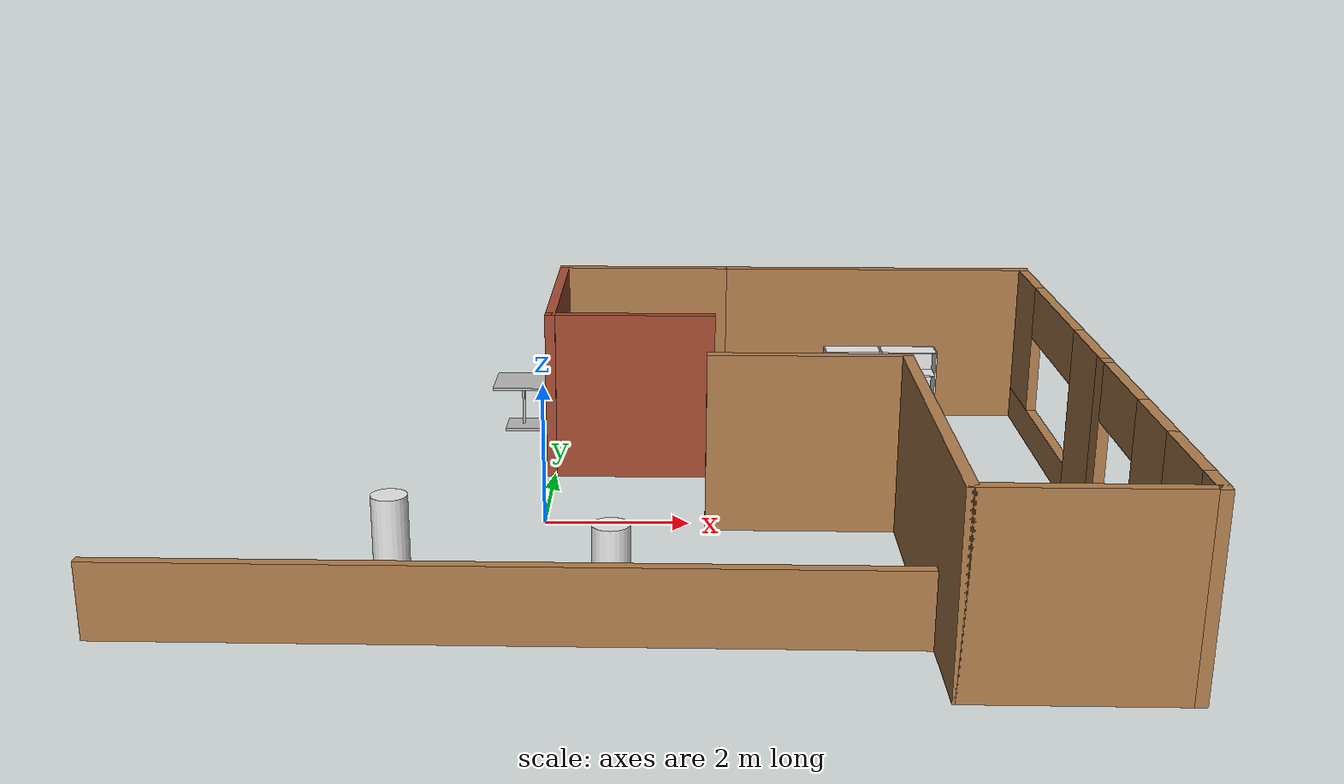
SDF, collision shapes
<sdf version="1.6">
 <model name="house">
  <link name="post2">
   <collision name="pole_2">
    <pose>1 -2 0.25 0 0 0</pose>
    <geometry><cylinder><radius>0.25</radius><length>1</length></cylinder></geometry>
   </collision>
   <visual name="pole_2">
    <pose>1 -2 0.25 0 0 0</pose>
    <geometry><cylinder><radius>0.25</radius><length>1</length></cylinder></geometry>
    <material>
     <script><uri>file://media/materials/scripts/gazebo.material</uri><name>Gazebo/White</name></script>
    </material>
   </visual>
  </link>
  <link name="post1">
   <collision name="pole_1">
    <pose>-2 -1 0.25 0 0 0</pose>
    <geometry><cylinder><radius>0.25</radius><length>1</length></cylinder></geometry>
   </collision>
   <visual name="pole_1">
    <pose>-2 -1 0.25 0 0 0</pose>
    <geometry><cylinder><radius>0.25</radius><length>1</length></cylinder></geometry>
    <material>
     <script><uri>file://media/materials/scripts/gazebo.material</uri><name>Gazebo/White</name></script>
    </material>
   </visual>
  </link>
  <link name="Wall_101">
   <pose>-0.05 3.6 0 0 0 -1.5708</pose>
   <visual name="Wall_101_Visual">
    <pose>0 0 1.25 0 -0 0</pose>
    <geometry><box><size>3.4 0.15 2.5</size></box></geometry>
    <material>
     <script><uri>file://media/materials/scripts/gazebo.material</uri><name>Gazebo/Bricks</name></script>
     <ambient>1 1 1 1</ambient>
     <diffuse>1 1 1 1</diffuse>
     <specular>0.2 0.2 0.2 1</specular>
     <emissive>0 0 0 1</emissive>
    </material>
   </visual>
   <collision name="Wall_101_Collision">
    <pose>0 0 1.25 0 -0 0</pose>
    <geometry><box><size>3.4 0.15 2.5</size></box></geometry>
    <surface>
     <friction>
      <ode><mu>1</mu><mu2>1</mu2><fdir1>0 0 0</fdir1><slip1>0</slip1><slip2>0</slip2></ode>
      <torsional>
       <coefficient>1</coefficient>
       <patch_radius>0</patch_radius>
       <surface_radius>0</surface_radius>
       <use_patch_radius>1</use_patch_radius>
       <ode><slip>0</slip></ode>
      </torsional>
     </friction>
     <bounce><restitution_coefficient>0</restitution_coefficient><threshold>1e+06</threshold></bounce>
     <contact>
      <collide_without_contact>0</collide_without_contact>
      <collide_without_contact_bitmask>1</collide_without_contact_bitmask>
      <collide_bitmask>1</collide_bitmask>
      <ode>
       <soft_cfm>0</soft_cfm>
       <soft_erp>0.2</soft_erp>
       <kp>1e+13</kp>
       <kd>1</kd>
       <max_vel>0.01</max_vel>
       <min_depth>0</min_depth>
      </ode>
      <bullet>
       <split_impulse>1</split_impulse>
       <split_impulse_penetration_threshold>-0.01</split_impulse_penetration_threshold>
       <soft_cfm>0</soft_cfm>
       <soft_erp>0.2</soft_erp>
       <kp>1e+13</kp>
       <kd>1</kd>
      </bullet>
     </contact>
    </surface>
   </collision>
  </link>
  <link name="Wall_108">
   <pose>0.7 -3.95 0 0 -0 0</pose>
   <visual name="Wall_108_Visual_0">
    <pose>-0.856324 0 0.5 0 -0 0</pose>
    <geometry><box><size>10 0.15 1</size></box></geometry>
    <material>
     <script><uri>file://media/materials/scripts/gazebo.material</uri><name>Gazebo/Wood</name></script>
     <ambient>1 1 1 1</ambient>
     <diffuse>1 1 1 1</diffuse>
     <specular>0.2 0.2 0.2 1</specular>
     <emissive>0 0 0 1</emissive>
    </material>
   </visual>
   <collision name="Wall_108_Collision_0">
    <pose>-0.856324 0 0.5 0 -0 0</pose>
    <geometry><box><size>10 0.15 1</size></box></geometry>
    <surface>
     <friction>
      <ode><mu>1</mu><mu2>1</mu2><fdir1>0 0 0</fdir1><slip1>0</slip1><slip2>0</slip2></ode>
      <torsional>
       <coefficient>1</coefficient>
       <patch_radius>0</patch_radius>
       <surface_radius>0</surface_radius>
       <use_patch_radius>1</use_patch_radius>
       <ode><slip>0</slip></ode>
      </torsional>
     </friction>
     <bounce><restitution_coefficient>0</restitution_coefficient><threshold>1e+06</threshold></bounce>
     <contact>
      <collide_without_contact>0</collide_without_contact>
      <collide_without_contact_bitmask>1</collide_without_contact_bitmask>
      <collide_bitmask>1</collide_bitmask>
      <ode>
       <soft_cfm>0</soft_cfm>
       <soft_erp>0.2</soft_erp>
       <kp>1e+13</kp>
       <kd>1</kd>
       <max_vel>0.01</max_vel>
       <min_depth>0</min_depth>
      </ode>
      <bullet>
       <split_impulse>1</split_impulse>
       <split_impulse_penetration_threshold>-0.01</split_impulse_penetration_threshold>
       <soft_cfm>0</soft_cfm>
       <soft_erp>0.2</soft_erp>
       <kp>1e+13</kp>
       <kd>1</kd>
      </bullet>
     </contact>
    </surface>
   </collision>
  </link>
  <link name="Wall_81">
   <pose>5.07752 5.2688 0 0 -0 3.14159</pose>
   <visual name="Wall_81_Visual">
    <pose>0 0 1.25 0 -0 0</pose>
    <geometry><box><size>5 0.15 2.5</size></box></geometry>
    <material>
     <script><uri>file://media/materials/scripts/gazebo.material</uri><name>Gazebo/Wood</name></script>
     <ambient>1 1 1 1</ambient>
     <diffuse>1 1 1 1</diffuse>
     <specular>0.2 0.2 0.2 1</specular>
     <emissive>0 0 0 1</emissive>
    </material>
   </visual>
   <collision name="Wall_81_Collision">
    <pose>0 0 1.25 0 -0 0</pose>
    <geometry><box><size>5 0.15 2.5</size></box></geometry>
    <surface>
     <friction>
      <ode><mu>1</mu><mu2>1</mu2><fdir1>0 0 0</fdir1><slip1>0</slip1><slip2>0</slip2></ode>
      <torsional>
       <coefficient>1</coefficient>
       <patch_radius>0</patch_radius>
       <surface_radius>0</surface_radius>
       <use_patch_radius>1</use_patch_radius>
       <ode><slip>0</slip></ode>
      </torsional>
     </friction>
     <bounce><restitution_coefficient>0</restitution_coefficient><threshold>1e+06</threshold></bounce>
     <contact>
      <collide_without_contact>0</collide_without_contact>
      <collide_without_contact_bitmask>1</collide_without_contact_bitmask>
      <collide_bitmask>1</collide_bitmask>
      <ode>
       <soft_cfm>0</soft_cfm>
       <soft_erp>0.2</soft_erp>
       <kp>1e+13</kp>
       <kd>1</kd>
       <max_vel>0.01</max_vel>
       <min_depth>0</min_depth>
      </ode>
      <bullet>
       <split_impulse>1</split_impulse>
       <split_impulse_penetration_threshold>-0.01</split_impulse_penetration_threshold>
       <soft_cfm>0</soft_cfm>
       <soft_erp>0.2</soft_erp>
       <kp>1e+13</kp>
       <kd>1</kd>
      </bullet>
     </contact>
    </surface>
   </collision>
  </link>
  <link name="Wall_82">
   <pose>1.25 5.26876 0 0 -0 3.14159</pose>
   <visual name="Wall_82_Visual">
    <pose>0 0 1.25 0 -0 0</pose>
    <geometry><box><size>2.75 0.15 2.5</size></box></geometry>
    <material>
     <script><uri>file://media/materials/scripts/gazebo.material</uri><name>Gazebo/Wood</name></script>
     <ambient>1 1 1 1</ambient>
     <diffuse>1 1 1 1</diffuse>
     <specular>0.2 0.2 0.2 1</specular>
     <emissive>0 0 0 1</emissive>
    </material>
   </visual>
   <collision name="Wall_82_Collision">
    <pose>0 0 1.25 0 -0 0</pose>
    <geometry><box><size>2.75 0.15 2.5</size></box></geometry>
    <surface>
     <friction>
      <ode><mu>1</mu><mu2>1</mu2><fdir1>0 0 0</fdir1><slip1>0</slip1><slip2>0</slip2></ode>
      <torsional>
       <coefficient>1</coefficient>
       <patch_radius>0</patch_radius>
       <surface_radius>0</surface_radius>
       <use_patch_radius>1</use_patch_radius>
       <ode><slip>0</slip></ode>
      </torsional>
     </friction>
     <bounce><restitution_coefficient>0</restitution_coefficient><threshold>1e+06</threshold></bounce>
     <contact>
      <collide_without_contact>0</collide_without_contact>
      <collide_without_contact_bitmask>1</collide_without_contact_bitmask>
      <collide_bitmask>1</collide_bitmask>
      <ode>
       <soft_cfm>0</soft_cfm>
       <soft_erp>0.2</soft_erp>
       <kp>1e+13</kp>
       <kd>1</kd>
       <max_vel>0.01</max_vel>
       <min_depth>0</min_depth>
      </ode>
      <bullet>
       <split_impulse>1</split_impulse>
       <split_impulse_penetration_threshold>-0.01</split_impulse_penetration_threshold>
       <soft_cfm>0</soft_cfm>
       <soft_erp>0.2</soft_erp>
       <kp>1e+13</kp>
       <kd>1</kd>
      </bullet>
     </contact>
    </surface>
   </collision>
  </link>
  <link name="Wall_90">
   <pose>1.125 2.0 0 0 -0 0</pose>
   <visual name="Wall_90_Visual">
    <pose>0 0 1.25 0 -0 0</pose>
    <geometry><box><size>2.5 0.15 2.5</size></box></geometry>
    <material>
     <script><uri>file://media/materials/scripts/gazebo.material</uri><name>Gazebo/Bricks</name></script>
     <ambient>1 1 1 1</ambient>
     <diffuse>1 1 1 1</diffuse>
     <specular>0.2 0.2 0.2 1</specular>
     <emissive>0 0 0 1</emissive>
    </material>
   </visual>
   <collision name="Wall_90_Collision">
    <pose>0 0 1.25 0 -0 0</pose>
    <geometry><box><size>2.5 0.15 2.5</size></box></geometry>
    <surface>
     <friction>
      <ode><mu>1</mu><mu2>1</mu2><fdir1>0 0 0</fdir1><slip1>0</slip1><slip2>0</slip2></ode>
      <torsional>
       <coefficient>1</coefficient>
       <patch_radius>0</patch_radius>
       <surface_radius>0</surface_radius>
       <use_patch_radius>1</use_patch_radius>
       <ode><slip>0</slip></ode>
      </torsional>
     </friction>
     <bounce><restitution_coefficient>0</restitution_coefficient><threshold>1e+06</threshold></bounce>
     <contact>
      <collide_without_contact>0</collide_without_contact>
      <collide_without_contact_bitmask>1</collide_without_contact_bitmask>
      <collide_bitmask>1</collide_bitmask>
      <ode>
       <soft_cfm>0</soft_cfm>
       <soft_erp>0.2</soft_erp>
       <kp>1e+13</kp>
       <kd>1</kd>
       <max_vel>0.01</max_vel>
       <min_depth>0</min_depth>
      </ode>
      <bullet>
       <split_impulse>1</split_impulse>
       <split_impulse_penetration_threshold>-0.01</split_impulse_penetration_threshold>
       <soft_cfm>0</soft_cfm>
       <soft_erp>0.2</soft_erp>
       <kp>1e+13</kp>
       <kd>1</kd>
      </bullet>
     </contact>
    </surface>
   </collision>
  </link>
  <link name="Wall_92">
   <pose>3.59994 -0.17494 0 0 0 -4.6e-05</pose>
   <visual name="Wall_92_Visual">
    <pose>0 0 1.25 0 -0 0</pose>
    <geometry><box><size>2.75 0.15 2.5</size></box></geometry>
    <material>
     <script><uri>file://media/materials/scripts/gazebo.material</uri><name>Gazebo/Wood</name></script>
     <ambient>1 1 1 1</ambient>
     <diffuse>1 1 1 1</diffuse>
     <specular>0.2 0.2 0.2 1</specular>
     <emissive>0 0 0 1</emissive>
    </material>
   </visual>
   <collision name="Wall_92_Collision">
    <pose>0 0 1.25 0 -0 0</pose>
    <geometry><box><size>2.75 0.15 2.5</size></box></geometry>
    <surface>
     <friction>
      <ode><mu>1</mu><mu2>1</mu2><fdir1>0 0 0</fdir1><slip1>0</slip1><slip2>0</slip2></ode>
      <torsional>
       <coefficient>1</coefficient>
       <patch_radius>0</patch_radius>
       <surface_radius>0</surface_radius>
       <use_patch_radius>1</use_patch_radius>
       <ode><slip>0</slip></ode>
      </torsional>
     </friction>
     <bounce><restitution_coefficient>0</restitution_coefficient><threshold>1e+06</threshold></bounce>
     <contact>
      <collide_without_contact>0</collide_without_contact>
      <collide_without_contact_bitmask>1</collide_without_contact_bitmask>
      <collide_bitmask>1</collide_bitmask>
      <ode>
       <soft_cfm>0</soft_cfm>
       <soft_erp>0.2</soft_erp>
       <kp>1e+13</kp>
       <kd>1</kd>
       <max_vel>0.01</max_vel>
       <min_depth>0</min_depth>
      </ode>
      <bullet>
       <split_impulse>1</split_impulse>
       <split_impulse_penetration_threshold>-0.01</split_impulse_penetration_threshold>
       <soft_cfm>0</soft_cfm>
       <soft_erp>0.2</soft_erp>
       <kp>1e+13</kp>
       <kd>1</kd>
      </bullet>
     </contact>
    </surface>
   </collision>
  </link>
  <link name="Wall_93">
   <pose>4.9 -2.725 0 0 0 -1.5708</pose>
   <visual name="Wall_93_Visual">
    <pose>0 0 1.25 0 -0 0</pose>
    <geometry><box><size>5.25 0.15 2.5</size></box></geometry>
    <material>
     <script><uri>file://media/materials/scripts/gazebo.material</uri><name>Gazebo/Wood</name></script>
     <ambient>1 1 1 1</ambient>
     <diffuse>1 1 1 1</diffuse>
     <specular>0.2 0.2 0.2 1</specular>
     <emissive>0 0 0 1</emissive>
    </material>
   </visual>
   <collision name="Wall_93_Collision">
    <pose>0 0 1.25 0 -0 0</pose>
    <geometry><box><size>5.25 0.15 2.5</size></box></geometry>
    <surface>
     <friction>
      <ode><mu>1</mu><mu2>1</mu2><fdir1>0 0 0</fdir1><slip1>0</slip1><slip2>0</slip2></ode>
      <torsional>
       <coefficient>1</coefficient>
       <patch_radius>0</patch_radius>
       <surface_radius>0</surface_radius>
       <use_patch_radius>1</use_patch_radius>
       <ode><slip>0</slip></ode>
      </torsional>
     </friction>
     <bounce><restitution_coefficient>0</restitution_coefficient><threshold>1e+06</threshold></bounce>
     <contact>
      <collide_without_contact>0</collide_without_contact>
      <collide_without_contact_bitmask>1</collide_without_contact_bitmask>
      <collide_bitmask>1</collide_bitmask>
      <ode>
       <soft_cfm>0</soft_cfm>
       <soft_erp>0.2</soft_erp>
       <kp>1e+13</kp>
       <kd>1</kd>
       <max_vel>0.01</max_vel>
       <min_depth>0</min_depth>
      </ode>
      <bullet>
       <split_impulse>1</split_impulse>
       <split_impulse_penetration_threshold>-0.01</split_impulse_penetration_threshold>
       <soft_cfm>0</soft_cfm>
       <soft_erp>0.2</soft_erp>
       <kp>1e+13</kp>
       <kd>1</kd>
      </bullet>
     </contact>
    </surface>
   </collision>
  </link>
  <link name="Wall_94">
   <pose>6.2 -5.275 0 0 -0 0</pose>
   <visual name="Wall_94_Visual">
    <pose>0 0 1.25 0 -0 0</pose>
    <geometry><box><size>2.75 0.15 2.5</size></box></geometry>
    <material>
     <script><uri>file://media/materials/scripts/gazebo.material</uri><name>Gazebo/Wood</name></script>
     <ambient>1 1 1 1</ambient>
     <diffuse>1 1 1 1</diffuse>
     <specular>0.2 0.2 0.2 1</specular>
     <emissive>0 0 0 1</emissive>
    </material>
   </visual>
   <collision name="Wall_94_Collision">
    <pose>0 0 1.25 0 -0 0</pose>
    <geometry><box><size>2.75 0.15 2.5</size></box></geometry>
    <surface>
     <friction>
      <ode><mu>1</mu><mu2>1</mu2><fdir1>0 0 0</fdir1><slip1>0</slip1><slip2>0</slip2></ode>
      <torsional>
       <coefficient>1</coefficient>
       <patch_radius>0</patch_radius>
       <surface_radius>0</surface_radius>
       <use_patch_radius>1</use_patch_radius>
       <ode><slip>0</slip></ode>
      </torsional>
     </friction>
     <bounce><restitution_coefficient>0</restitution_coefficient><threshold>1e+06</threshold></bounce>
     <contact>
      <collide_without_contact>0</collide_without_contact>
      <collide_without_contact_bitmask>1</collide_without_contact_bitmask>
      <collide_bitmask>1</collide_bitmask>
      <ode>
       <soft_cfm>0</soft_cfm>
       <soft_erp>0.2</soft_erp>
       <kp>1e+13</kp>
       <kd>1</kd>
       <max_vel>0.01</max_vel>
       <min_depth>0</min_depth>
      </ode>
      <bullet>
       <split_impulse>1</split_impulse>
       <split_impulse_penetration_threshold>-0.01</split_impulse_penetration_threshold>
       <soft_cfm>0</soft_cfm>
       <soft_erp>0.2</soft_erp>
       <kp>1e+13</kp>
       <kd>1</kd>
      </bullet>
     </contact>
    </surface>
   </collision>
  </link>
  <link name="Wall_95">
   <pose>7.5 -2.725 0 0 -0 1.5708</pose>
   <visual name="Wall_95_Visual_1">
    <pose>0.295715 0 0.25 0 -0 0</pose>
    <geometry><box><size>4.65857 0.15 0.5</size></box></geometry>
    <material>
     <script><uri>file://media/materials/scripts/gazebo.material</uri><name>Gazebo/Wood</name></script>
     <ambient>1 1 1 1</ambient>
     <diffuse>1 1 1 1</diffuse>
     <specular>0.2 0.2 0.2 1</specular>
     <emissive>0 0 0 1</emissive>
    </material>
   </visual>
   <visual name="Wall_95_Visual_2">
    <pose>-0.036959 0 1.5 0 -0 0</pose>
    <geometry><box><size>1.27522 0.15 2</size></box></geometry>
    <material>
     <script><uri>file://media/materials/scripts/gazebo.material</uri><name>Gazebo/Wood</name></script>
     <ambient>1 1 1 1</ambient>
     <diffuse>1 1 1 1</diffuse>
     <specular>0.2 0.2 0.2 1</specular>
     <emissive>0 0 0 1</emissive>
    </material>
   </visual>
   <visual name="Wall_95_Visual_3">
    <pose>2.43783 0 1.5 0 -0 0</pose>
    <geometry><box><size>0.374348 0.15 2</size></box></geometry>
    <material>
     <script><uri>file://media/materials/scripts/gazebo.material</uri><name>Gazebo/Wood</name></script>
     <ambient>1 1 1 1</ambient>
     <diffuse>1 1 1 1</diffuse>
     <specular>0.2 0.2 0.2 1</specular>
     <emissive>0 0 0 1</emissive>
    </material>
   </visual>
   <visual name="Wall_95_Visual_5">
    <pose>1.42565 0 2.1 0 -0 0</pose>
    <geometry><box><size>1.65 0.15 0.8</size></box></geometry>
    <material>
     <script><uri>file://media/materials/scripts/gazebo.material</uri><name>Gazebo/Wood</name></script>
     <ambient>1 1 1 1</ambient>
     <diffuse>1 1 1 1</diffuse>
     <specular>0.2 0.2 0.2 1</specular>
     <emissive>0 0 0 1</emissive>
    </material>
   </visual>
   <visual name="Wall_95_Visual_4">
    <pose>-1.35407 0 2.1 0 -0 0</pose>
    <geometry><box><size>1.359 0.15 0.8</size></box></geometry>
    <material>
     <script><uri>file://media/materials/scripts/gazebo.material</uri><name>Gazebo/Wood</name></script>
     <ambient>1 1 1 1</ambient>
     <diffuse>1 1 1 1</diffuse>
     <specular>0.2 0.2 0.2 1</specular>
     <emissive>0 0 0 1</emissive>
    </material>
   </visual>
   <visual name="Wall_95_Visual_0">
    <pose>-2.32929 0 1.25 0 -0 0</pose>
    <geometry><box><size>0.591431 0.15 2.5</size></box></geometry>
    <material>
     <script><uri>file://media/materials/scripts/gazebo.material</uri><name>Gazebo/Wood</name></script>
     <ambient>1 1 1 1</ambient>
     <diffuse>1 1 1 1</diffuse>
     <specular>0.2 0.2 0.2 1</specular>
     <emissive>0 0 0 1</emissive>
    </material>
   </visual>
   <collision name="Wall_95_Collision_2">
    <pose>-0.036959 0 1.5 0 -0 0</pose>
    <geometry><box><size>1.27522 0.15 2</size></box></geometry>
    <surface>
     <friction>
      <ode><mu>1</mu><mu2>1</mu2><fdir1>0 0 0</fdir1><slip1>0</slip1><slip2>0</slip2></ode>
      <torsional>
       <coefficient>1</coefficient>
       <patch_radius>0</patch_radius>
       <surface_radius>0</surface_radius>
       <use_patch_radius>1</use_patch_radius>
       <ode><slip>0</slip></ode>
      </torsional>
     </friction>
     <bounce><restitution_coefficient>0</restitution_coefficient><threshold>1e+06</threshold></bounce>
     <contact>
      <collide_without_contact>0</collide_without_contact>
      <collide_without_contact_bitmask>1</collide_without_contact_bitmask>
      <collide_bitmask>1</collide_bitmask>
      <ode>
       <soft_cfm>0</soft_cfm>
       <soft_erp>0.2</soft_erp>
       <kp>1e+13</kp>
       <kd>1</kd>
       <max_vel>0.01</max_vel>
       <min_depth>0</min_depth>
      </ode>
      <bullet>
       <split_impulse>1</split_impulse>
       <split_impulse_penetration_threshold>-0.01</split_impulse_penetration_threshold>
       <soft_cfm>0</soft_cfm>
       <soft_erp>0.2</soft_erp>
       <kp>1e+13</kp>
       <kd>1</kd>
      </bullet>
     </contact>
    </surface>
   </collision>
   <collision name="Wall_95_Collision_3">
    <pose>2.43783 0 1.5 0 -0 0</pose>
    <geometry><box><size>0.374348 0.15 2</size></box></geometry>
    <surface>
     <friction>
      <ode><mu>1</mu><mu2>1</mu2><fdir1>0 0 0</fdir1><slip1>0</slip1><slip2>0</slip2></ode>
      <torsional>
       <coefficient>1</coefficient>
       <patch_radius>0</patch_radius>
       <surface_radius>0</surface_radius>
       <use_patch_radius>1</use_patch_radius>
       <ode><slip>0</slip></ode>
      </torsional>
     </friction>
     <bounce><restitution_coefficient>0</restitution_coefficient><threshold>1e+06</threshold></bounce>
     <contact>
      <collide_without_contact>0</collide_without_contact>
      <collide_without_contact_bitmask>1</collide_without_contact_bitmask>
      <collide_bitmask>1</collide_bitmask>
      <ode>
       <soft_cfm>0</soft_cfm>
       <soft_erp>0.2</soft_erp>
       <kp>1e+13</kp>
       <kd>1</kd>
       <max_vel>0.01</max_vel>
       <min_depth>0</min_depth>
      </ode>
      <bullet>
       <split_impulse>1</split_impulse>
       <split_impulse_penetration_threshold>-0.01</split_impulse_penetration_threshold>
       <soft_cfm>0</soft_cfm>
       <soft_erp>0.2</soft_erp>
       <kp>1e+13</kp>
       <kd>1</kd>
      </bullet>
     </contact>
    </surface>
   </collision>
   <collision name="Wall_95_Collision_5">
    <pose>1.42565 0 2.1 0 -0 0</pose>
    <geometry><box><size>1.65 0.15 0.8</size></box></geometry>
    <surface>
     <friction>
      <ode><mu>1</mu><mu2>1</mu2><fdir1>0 0 0</fdir1><slip1>0</slip1><slip2>0</slip2></ode>
      <torsional>
       <coefficient>1</coefficient>
       <patch_radius>0</patch_radius>
       <surface_radius>0</surface_radius>
       <use_patch_radius>1</use_patch_radius>
       <ode><slip>0</slip></ode>
      </torsional>
     </friction>
     <bounce><restitution_coefficient>0</restitution_coefficient><threshold>1e+06</threshold></bounce>
     <contact>
      <collide_without_contact>0</collide_without_contact>
      <collide_without_contact_bitmask>1</collide_without_contact_bitmask>
      <collide_bitmask>1</collide_bitmask>
      <ode>
       <soft_cfm>0</soft_cfm>
       <soft_erp>0.2</soft_erp>
       <kp>1e+13</kp>
       <kd>1</kd>
       <max_vel>0.01</max_vel>
       <min_depth>0</min_depth>
      </ode>
      <bullet>
       <split_impulse>1</split_impulse>
       <split_impulse_penetration_threshold>-0.01</split_impulse_penetration_threshold>
       <soft_cfm>0</soft_cfm>
       <soft_erp>0.2</soft_erp>
       <kp>1e+13</kp>
       <kd>1</kd>
      </bullet>
     </contact>
    </surface>
   </collision>
   <collision name="Wall_95_Collision_0">
    <pose>-2.32929 0 1.25 0 -0 0</pose>
    <geometry><box><size>0.591431 0.15 2.5</size></box></geometry>
    <surface>
     <friction>
      <ode><mu>1</mu><mu2>1</mu2><fdir1>0 0 0</fdir1><slip1>0</slip1><slip2>0</slip2></ode>
      <torsional>
       <coefficient>1</coefficient>
       <patch_radius>0</patch_radius>
       <surface_radius>0</surface_radius>
       <use_patch_radius>1</use_patch_radius>
       <ode><slip>0</slip></ode>
      </torsional>
     </friction>
     <bounce><restitution_coefficient>0</restitution_coefficient><threshold>1e+06</threshold></bounce>
     <contact>
      <collide_without_contact>0</collide_without_contact>
      <collide_without_contact_bitmask>1</collide_without_contact_bitmask>
      <collide_bitmask>1</collide_bitmask>
      <ode>
       <soft_cfm>0</soft_cfm>
       <soft_erp>0.2</soft_erp>
       <kp>1e+13</kp>
       <kd>1</kd>
       <max_vel>0.01</max_vel>
       <min_depth>0</min_depth>
      </ode>
      <bullet>
       <split_impulse>1</split_impulse>
       <split_impulse_penetration_threshold>-0.01</split_impulse_penetration_threshold>
       <soft_cfm>0</soft_cfm>
       <soft_erp>0.2</soft_erp>
       <kp>1e+13</kp>
       <kd>1</kd>
      </bullet>
     </contact>
    </surface>
   </collision>
   <collision name="Wall_95_Collision_1">
    <pose>0.295715 0 0.25 0 -0 0</pose>
    <geometry><box><size>4.65857 0.15 0.5</size></box></geometry>
    <surface>
     <friction>
      <ode><mu>1</mu><mu2>1</mu2><fdir1>0 0 0</fdir1><slip1>0</slip1><slip2>0</slip2></ode>
      <torsional>
       <coefficient>1</coefficient>
       <patch_radius>0</patch_radius>
       <surface_radius>0</surface_radius>
       <use_patch_radius>1</use_patch_radius>
       <ode><slip>0</slip></ode>
      </torsional>
     </friction>
     <bounce><restitution_coefficient>0</restitution_coefficient><threshold>1e+06</threshold></bounce>
     <contact>
      <collide_without_contact>0</collide_without_contact>
      <collide_without_contact_bitmask>1</collide_without_contact_bitmask>
      <collide_bitmask>1</collide_bitmask>
      <ode>
       <soft_cfm>0</soft_cfm>
       <soft_erp>0.2</soft_erp>
       <kp>1e+13</kp>
       <kd>1</kd>
       <max_vel>0.01</max_vel>
       <min_depth>0</min_depth>
      </ode>
      <bullet>
       <split_impulse>1</split_impulse>
       <split_impulse_penetration_threshold>-0.01</split_impulse_penetration_threshold>
       <soft_cfm>0</soft_cfm>
       <soft_erp>0.2</soft_erp>
       <kp>1e+13</kp>
       <kd>1</kd>
      </bullet>
     </contact>
    </surface>
   </collision>
   <collision name="Wall_95_Collision_4">
    <pose>-1.35407 0 2.1 0 -0 0</pose>
    <geometry><box><size>1.359 0.15 0.8</size></box></geometry>
    <surface>
     <friction>
      <ode><mu>1</mu><mu2>1</mu2><fdir1>0 0 0</fdir1><slip1>0</slip1><slip2>0</slip2></ode>
      <torsional>
       <coefficient>1</coefficient>
       <patch_radius>0</patch_radius>
       <surface_radius>0</surface_radius>
       <use_patch_radius>1</use_patch_radius>
       <ode><slip>0</slip></ode>
      </torsional>
     </friction>
     <bounce><restitution_coefficient>0</restitution_coefficient><threshold>1e+06</threshold></bounce>
     <contact>
      <collide_without_contact>0</collide_without_contact>
      <collide_without_contact_bitmask>1</collide_without_contact_bitmask>
      <collide_bitmask>1</collide_bitmask>
      <ode>
       <soft_cfm>0</soft_cfm>
       <soft_erp>0.2</soft_erp>
       <kp>1e+13</kp>
       <kd>1</kd>
       <max_vel>0.01</max_vel>
       <min_depth>0</min_depth>
      </ode>
      <bullet>
       <split_impulse>1</split_impulse>
       <split_impulse_penetration_threshold>-0.01</split_impulse_penetration_threshold>
       <soft_cfm>0</soft_cfm>
       <soft_erp>0.2</soft_erp>
       <kp>1e+13</kp>
       <kd>1</kd>
      </bullet>
     </contact>
    </surface>
   </collision>
  </link>
  <link name="Wall_96">
   <pose>7.5 2.5 0 0 -0 1.5708</pose>
   <visual name="Wall_96_Visual_1">
    <pose>0.75174 0 0.25 0 -0 0</pose>
    <geometry><box><size>3.99652 0.15 0.5</size></box></geometry>
    <material>
     <script><uri>file://media/materials/scripts/gazebo.material</uri><name>Gazebo/Wood</name></script>
     <ambient>1 1 1 1</ambient>
     <diffuse>1 1 1 1</diffuse>
     <specular>0.2 0.2 0.2 1</specular>
     <emissive>0 0 0 1</emissive>
    </material>
   </visual>
   <visual name="Wall_96_Visual_2">
    <pose>2.06924 0 1.5 0 -0 0</pose>
    <geometry><box><size>1.36152 0.15 2</size></box></geometry>
    <material>
     <script><uri>file://media/materials/scripts/gazebo.material</uri><name>Gazebo/Wood</name></script>
     <ambient>1 1 1 1</ambient>
     <diffuse>1 1 1 1</diffuse>
     <specular>0.2 0.2 0.2 1</specular>
     <emissive>0 0 0 1</emissive>
    </material>
   </visual>
   <visual name="Wall_96_Visual_3">
    <pose>0.070981 0 2.1 0 -0 0</pose>
    <geometry><box><size>2.635 0.15 0.8</size></box></geometry>
    <material>
     <script><uri>file://media/materials/scripts/gazebo.material</uri><name>Gazebo/Wood</name></script>
     <ambient>1 1 1 1</ambient>
     <diffuse>1 1 1 1</diffuse>
     <specular>0.2 0.2 0.2 1</specular>
     <emissive>0 0 0 1</emissive>
    </material>
   </visual>
   <visual name="Wall_96_Visual_0">
    <pose>-1.99826 0 1.25 0 -0 0</pose>
    <geometry><box><size>1.50348 0.15 2.5</size></box></geometry>
    <material>
     <script><uri>file://media/materials/scripts/gazebo.material</uri><name>Gazebo/Wood</name></script>
     <ambient>1 1 1 1</ambient>
     <diffuse>1 1 1 1</diffuse>
     <specular>0.2 0.2 0.2 1</specular>
     <emissive>0 0 0 1</emissive>
    </material>
   </visual>
   <collision name="Wall_96_Collision_2">
    <pose>2.06924 0 1.5 0 -0 0</pose>
    <geometry><box><size>1.36152 0.15 2</size></box></geometry>
    <surface>
     <friction>
      <ode><mu>1</mu><mu2>1</mu2><fdir1>0 0 0</fdir1><slip1>0</slip1><slip2>0</slip2></ode>
      <torsional>
       <coefficient>1</coefficient>
       <patch_radius>0</patch_radius>
       <surface_radius>0</surface_radius>
       <use_patch_radius>1</use_patch_radius>
       <ode><slip>0</slip></ode>
      </torsional>
     </friction>
     <bounce><restitution_coefficient>0</restitution_coefficient><threshold>1e+06</threshold></bounce>
     <contact>
      <collide_without_contact>0</collide_without_contact>
      <collide_without_contact_bitmask>1</collide_without_contact_bitmask>
      <collide_bitmask>1</collide_bitmask>
      <ode>
       <soft_cfm>0</soft_cfm>
       <soft_erp>0.2</soft_erp>
       <kp>1e+13</kp>
       <kd>1</kd>
       <max_vel>0.01</max_vel>
       <min_depth>0</min_depth>
      </ode>
      <bullet>
       <split_impulse>1</split_impulse>
       <split_impulse_penetration_threshold>-0.01</split_impulse_penetration_threshold>
       <soft_cfm>0</soft_cfm>
       <soft_erp>0.2</soft_erp>
       <kp>1e+13</kp>
       <kd>1</kd>
      </bullet>
     </contact>
    </surface>
   </collision>
   <collision name="Wall_96_Collision_0">
    <pose>-1.99826 0 1.25 0 -0 0</pose>
    <geometry><box><size>1.50348 0.15 2.5</size></box></geometry>
    <surface>
     <friction>
      <ode><mu>1</mu><mu2>1</mu2><fdir1>0 0 0</fdir1><slip1>0</slip1><slip2>0</slip2></ode>
      <torsional>
       <coefficient>1</coefficient>
       <patch_radius>0</patch_radius>
       <surface_radius>0</surface_radius>
       <use_patch_radius>1</use_patch_radius>
       <ode><slip>0</slip></ode>
      </torsional>
     </friction>
     <bounce><restitution_coefficient>0</restitution_coefficient><threshold>1e+06</threshold></bounce>
     <contact>
      <collide_without_contact>0</collide_without_contact>
      <collide_without_contact_bitmask>1</collide_without_contact_bitmask>
      <collide_bitmask>1</collide_bitmask>
      <ode>
       <soft_cfm>0</soft_cfm>
       <soft_erp>0.2</soft_erp>
       <kp>1e+13</kp>
       <kd>1</kd>
       <max_vel>0.01</max_vel>
       <min_depth>0</min_depth>
      </ode>
      <bullet>
       <split_impulse>1</split_impulse>
       <split_impulse_penetration_threshold>-0.01</split_impulse_penetration_threshold>
       <soft_cfm>0</soft_cfm>
       <soft_erp>0.2</soft_erp>
       <kp>1e+13</kp>
       <kd>1</kd>
      </bullet>
     </contact>
    </surface>
   </collision>
   <collision name="Wall_96_Collision_3">
    <pose>0.070981 0 2.1 0 -0 0</pose>
    <geometry><box><size>2.635 0.15 0.8</size></box></geometry>
    <surface>
     <friction>
      <ode><mu>1</mu><mu2>1</mu2><fdir1>0 0 0</fdir1><slip1>0</slip1><slip2>0</slip2></ode>
      <torsional>
       <coefficient>1</coefficient>
       <patch_radius>0</patch_radius>
       <surface_radius>0</surface_radius>
       <use_patch_radius>1</use_patch_radius>
       <ode><slip>0</slip></ode>
      </torsional>
     </friction>
     <bounce><restitution_coefficient>0</restitution_coefficient><threshold>1e+06</threshold></bounce>
     <contact>
      <collide_without_contact>0</collide_without_contact>
      <collide_without_contact_bitmask>1</collide_without_contact_bitmask>
      <collide_bitmask>1</collide_bitmask>
      <ode>
       <soft_cfm>0</soft_cfm>
       <soft_erp>0.2</soft_erp>
       <kp>1e+13</kp>
       <kd>1</kd>
       <max_vel>0.01</max_vel>
       <min_depth>0</min_depth>
      </ode>
      <bullet>
       <split_impulse>1</split_impulse>
       <split_impulse_penetration_threshold>-0.01</split_impulse_penetration_threshold>
       <soft_cfm>0</soft_cfm>
       <soft_erp>0.2</soft_erp>
       <kp>1e+13</kp>
       <kd>1</kd>
      </bullet>
     </contact>
    </surface>
   </collision>
   <collision name="Wall_96_Collision_1">
    <pose>0.75174 0 0.25 0 -0 0</pose>
    <geometry><box><size>3.99652 0.15 0.5</size></box></geometry>
    <surface>
     <friction>
      <ode><mu>1</mu><mu2>1</mu2><fdir1>0 0 0</fdir1><slip1>0</slip1><slip2>0</slip2></ode>
      <torsional>
       <coefficient>1</coefficient>
       <patch_radius>0</patch_radius>
       <surface_radius>0</surface_radius>
       <use_patch_radius>1</use_patch_radius>
       <ode><slip>0</slip></ode>
      </torsional>
     </friction>
     <bounce><restitution_coefficient>0</restitution_coefficient><threshold>1e+06</threshold></bounce>
     <contact>
      <collide_without_contact>0</collide_without_contact>
      <collide_without_contact_bitmask>1</collide_without_contact_bitmask>
      <collide_bitmask>1</collide_bitmask>
      <ode>
       <soft_cfm>0</soft_cfm>
       <soft_erp>0.2</soft_erp>
       <kp>1e+13</kp>
       <kd>1</kd>
       <max_vel>0.01</max_vel>
       <min_depth>0</min_depth>
      </ode>
      <bullet>
       <split_impulse>1</split_impulse>
       <split_impulse_penetration_threshold>-0.01</split_impulse_penetration_threshold>
       <soft_cfm>0</soft_cfm>
       <soft_erp>0.2</soft_erp>
       <kp>1e+13</kp>
       <kd>1</kd>
      </bullet>
     </contact>
    </surface>
   </collision>
  </link>
  <model name="bookshelf_0">
   <static>1</static>
   <link name="link">
    <inertial><mass>1</mass></inertial>
    <collision name="back">
     <pose>0 0.005 0.6 0 -0 0</pose>
     <geometry><box><size>0.9 0.01 1.2</size></box></geometry>
    </collision>
    <visual name="visual1">
     <pose>0 0.005 0.6 0 -0 0</pose>
     <geometry><box><size>0.9 0.01 1.2</size></box></geometry>
     <material>
      <script><uri>file://media/materials/scripts/gazebo.material</uri><name>Gazebo/White</name></script>
     </material>
    </visual>
    <collision name="left_side">
     <pose>0.45 -0.195 0.6 0 -0 0</pose>
     <geometry><box><size>0.02 0.4 1.2</size></box></geometry>
    </collision>
    <visual name="visual2">
     <pose>0.45 -0.195 0.6 0 -0 0</pose>
     <geometry><box><size>0.02 0.4 1.2</size></box></geometry>
     <material>
      <script><uri>file://media/materials/scripts/gazebo.material</uri><name>Gazebo/White</name></script>
     </material>
    </visual>
    <collision name="right_side">
     <pose>-0.45 -0.195 0.6 0 -0 0</pose>
     <geometry><box><size>0.02 0.4 1.2</size></box></geometry>
    </collision>
    <visual name="visual3">
     <pose>-0.45 -0.195 0.6 0 -0 0</pose>
     <geometry><box><size>0.02 0.4 1.2</size></box></geometry>
     <material>
      <script><uri>file://media/materials/scripts/gazebo.material</uri><name>Gazebo/White</name></script>
     </material>
    </visual>
    <collision name="bottom">
     <pose>0 -0.195 0.03 0 -0 0</pose>
     <geometry><box><size>0.88 0.4 0.06</size></box></geometry>
    </collision>
    <visual name="visual4">
     <pose>0 -0.195 0.03 0 -0 0</pose>
     <geometry><box><size>0.88 0.4 0.06</size></box></geometry>
     <material>
      <script><uri>file://media/materials/scripts/gazebo.material</uri><name>Gazebo/White</name></script>
     </material>
    </visual>
    <collision name="top">
     <pose>0 -0.195 1.19 0 -0 0</pose>
     <geometry><box><size>0.88 0.4 0.02</size></box></geometry>
    </collision>
    <visual name="visual5">
     <pose>0 -0.195 1.19 0 -0 0</pose>
     <geometry><box><size>0.88 0.4 0.02</size></box></geometry>
     <material>
      <script><uri>file://media/materials/scripts/gazebo.material</uri><name>Gazebo/White</name></script>
     </material>
    </visual>
    <collision name="low_shelf">
     <pose>0 -0.195 0.43 0 -0 0</pose>
     <geometry><box><size>0.88 0.4 0.02</size></box></geometry>
    </collision>
    <visual name="visual6">
     <pose>0 -0.195 0.43 0 -0 0</pose>
     <geometry><box><size>0.88 0.4 0.02</size></box></geometry>
     <material>
      <script><uri>file://media/materials/scripts/gazebo.material</uri><name>Gazebo/White</name></script>
     </material>
    </visual>
    <collision name="high_shelf">
     <pose>0 -0.195 0.8 0 -0 0</pose>
     <geometry><box><size>0.88 0.4 0.02</size></box></geometry>
    </collision>
    <visual name="visual7">
     <pose>0 -0.195 0.8 0 -0 0</pose>
     <geometry><box><size>0.88 0.4 0.02</size></box></geometry>
     <material>
      <script><uri>file://media/materials/scripts/gazebo.material</uri><name>Gazebo/White</name></script>
     </material>
    </visual>
   </link>
   <pose>4.72359 5.17921 0 0 -0 0</pose>
  </model>
  <model name="bookshelf_1">
   <static>1</static>
   <link name="link">
    <inertial><mass>1</mass></inertial>
    <collision name="back">
     <pose>0 0.005 0.6 0 -0 0</pose>
     <geometry><box><size>0.9 0.01 1.2</size></box></geometry>
    </collision>
    <visual name="visual1">
     <pose>0 0.005 0.6 0 -0 0</pose>
     <geometry><box><size>0.9 0.01 1.2</size></box></geometry>
     <material>
      <script><uri>file://media/materials/scripts/gazebo.material</uri><name>Gazebo/White</name></script>
     </material>
    </visual>
    <collision name="left_side">
     <pose>0.45 -0.195 0.6 0 -0 0</pose>
     <geometry><box><size>0.02 0.4 1.2</size></box></geometry>
    </collision>
    <visual name="visual2">
     <pose>0.45 -0.195 0.6 0 -0 0</pose>
     <geometry><box><size>0.02 0.4 1.2</size></box></geometry>
     <material>
      <script><uri>file://media/materials/scripts/gazebo.material</uri><name>Gazebo/White</name></script>
     </material>
    </visual>
    <collision name="right_side">
     <pose>-0.45 -0.195 0.6 0 -0 0</pose>
     <geometry><box><size>0.02 0.4 1.2</size></box></geometry>
    </collision>
    <visual name="visual3">
     <pose>-0.45 -0.195 0.6 0 -0 0</pose>
     <geometry><box><size>0.02 0.4 1.2</size></box></geometry>
     <material>
      <script><uri>file://media/materials/scripts/gazebo.material</uri><name>Gazebo/White</name></script>
     </material>
    </visual>
    <collision name="bottom">
     <pose>0 -0.195 0.03 0 -0 0</pose>
     <geometry><box><size>0.88 0.4 0.06</size></box></geometry>
    </collision>
    <visual name="visual4">
     <pose>0 -0.195 0.03 0 -0 0</pose>
     <geometry><box><size>0.88 0.4 0.06</size></box></geometry>
     <material>
      <script><uri>file://media/materials/scripts/gazebo.material</uri><name>Gazebo/White</name></script>
     </material>
    </visual>
    <collision name="top">
     <pose>0 -0.195 1.19 0 -0 0</pose>
     <geometry><box><size>0.88 0.4 0.02</size></box></geometry>
    </collision>
    <visual name="visual5">
     <pose>0 -0.195 1.19 0 -0 0</pose>
     <geometry><box><size>0.88 0.4 0.02</size></box></geometry>
     <material>
      <script><uri>file://media/materials/scripts/gazebo.material</uri><name>Gazebo/White</name></script>
     </material>
    </visual>
    <collision name="low_shelf">
     <pose>0 -0.195 0.43 0 -0 0</pose>
     <geometry><box><size>0.88 0.4 0.02</size></box></geometry>
    </collision>
    <visual name="visual6">
     <pose>0 -0.195 0.43 0 -0 0</pose>
     <geometry><box><size>0.88 0.4 0.02</size></box></geometry>
     <material>
      <script><uri>file://media/materials/scripts/gazebo.material</uri><name>Gazebo/White</name></script>
     </material>
    </visual>
    <collision name="high_shelf">
     <pose>0 -0.195 0.8 0 -0 0</pose>
     <geometry><box><size>0.88 0.4 0.02</size></box></geometry>
    </collision>
    <visual name="visual7">
     <pose>0 -0.195 0.8 0 -0 0</pose>
     <geometry><box><size>0.88 0.4 0.02</size></box></geometry>
     <material>
      <script><uri>file://media/materials/scripts/gazebo.material</uri><name>Gazebo/White</name></script>
     </material>
    </visual>
   </link>
   <pose>5.64449 5.17912 0 0 -0 0</pose>
  </model>
  <model name="table_4">
   <static>1</static>
   <link name="link">
    <collision name="surface">
     <pose>0 0 0.755 0 -0 0</pose>
     <geometry><box><size>0.913 0.913 0.04</size></box></geometry>
    </collision>
    <collision name="column">
     <pose>0 0 0.37 0 -0 0</pose>
     <geometry><box><size>0.042 0.042 0.74</size></box></geometry>
    </collision>
    <collision name="base">
     <pose>0 0 0.02 0 -0 0</pose>
     <geometry><box><size>0.56 0.56 0.04</size></box></geometry>
    </collision>
    <visual name="visual">
     <geometry><mesh><uri>model://cafe_table/meshes/cafe_table.dae</uri></mesh></geometry>
    </visual>
   </link>
   <pose>5.65 -4.45 0 0 -0 0</pose>
  </model>
  <model name="table_3">
   <static>1</static>
   <link name="link">
    <collision name="surface">
     <pose>0 0 0.755 0 -0 0</pose>
     <geometry><box><size>0.913 0.913 0.04</size></box></geometry>
    </collision>
    <collision name="column">
     <pose>0 0 0.37 0 -0 0</pose>
     <geometry><box><size>0.042 0.042 0.74</size></box></geometry>
    </collision>
    <collision name="base">
     <pose>0 0 0.02 0 -0 0</pose>
     <geometry><box><size>0.56 0.56 0.04</size></box></geometry>
    </collision>
    <visual name="visual">
     <geometry><mesh><uri>model://cafe_table/meshes/cafe_table.dae</uri></mesh></geometry>
    </visual>
   </link>
   <pose>0.5 2.6 0 0 -0 0</pose>
  </model>
  <model name="table_2">
   <static>1</static>
   <link name="link">
    <collision name="surface">
     <pose>0 0 0.755 0 -0 0</pose>
     <geometry><box><size>0.913 0.913 0.04</size></box></geometry>
    </collision>
    <collision name="column">
     <pose>0 0 0.37 0 -0 0</pose>
     <geometry><box><size>0.042 0.042 0.74</size></box></geometry>
    </collision>
    <collision name="base">
     <pose>0 0 0.02 0 -0 0</pose>
     <geometry><box><size>0.56 0.56 0.04</size></box></geometry>
    </collision>
    <visual name="visual">
     <geometry><mesh><uri>model://cafe_table/meshes/cafe_table.dae</uri></mesh></geometry>
    </visual>
   </link>
   <pose>-0.7 4.42376 0 0 -0 0</pose>
  </model>
  <static>1</static>
 </model>
</sdf>
